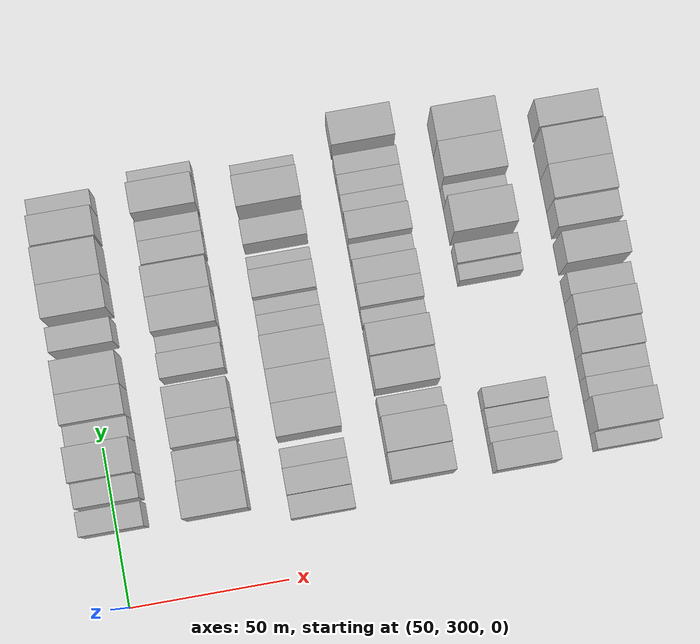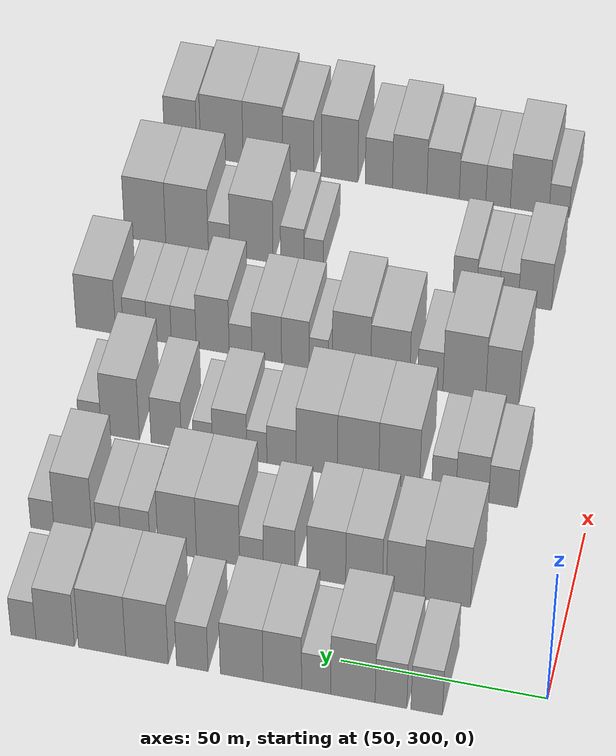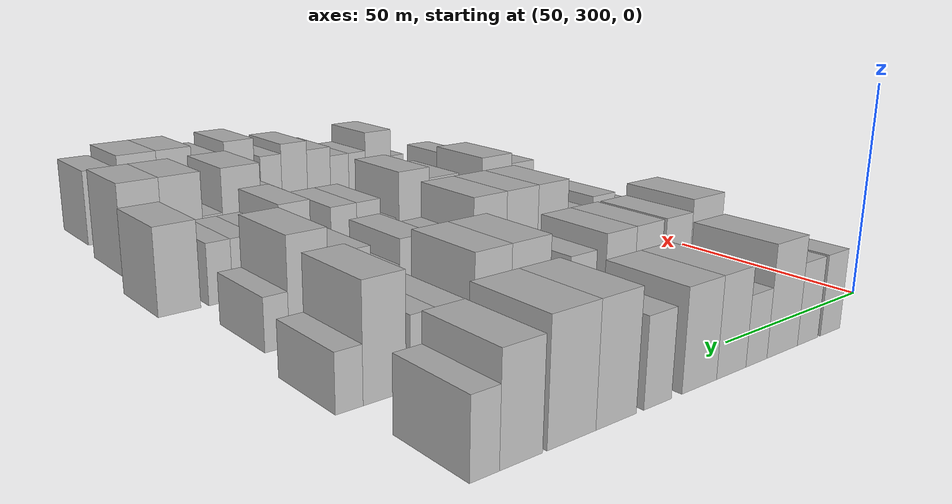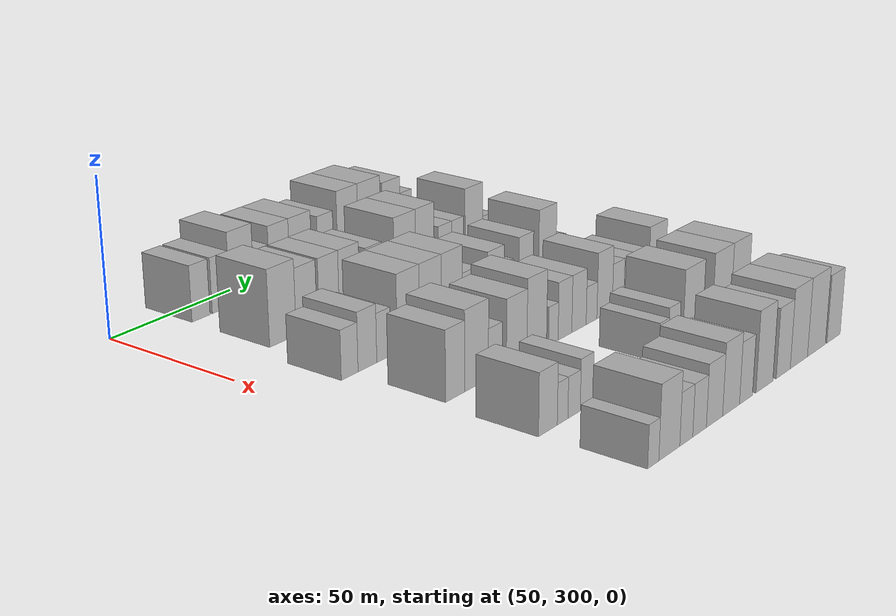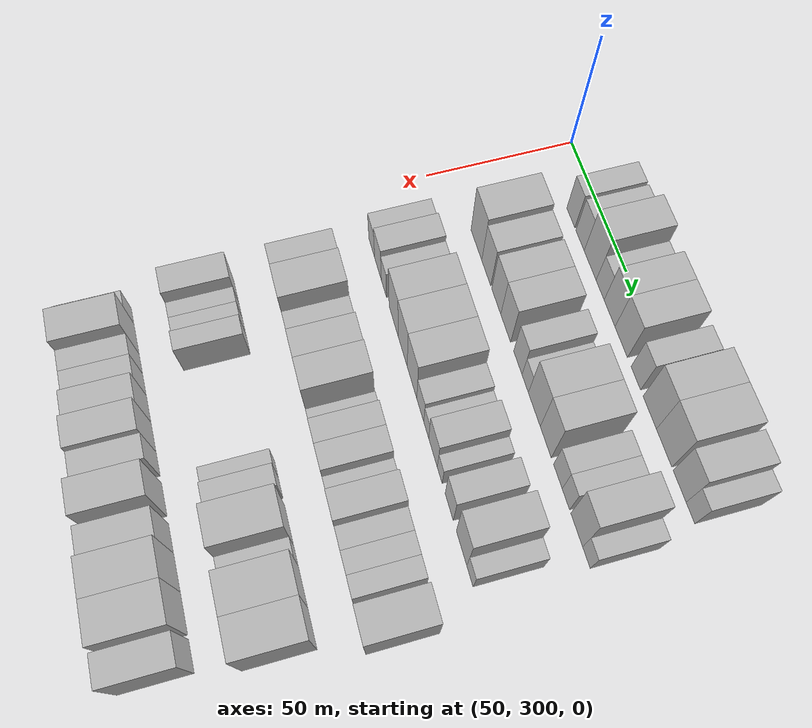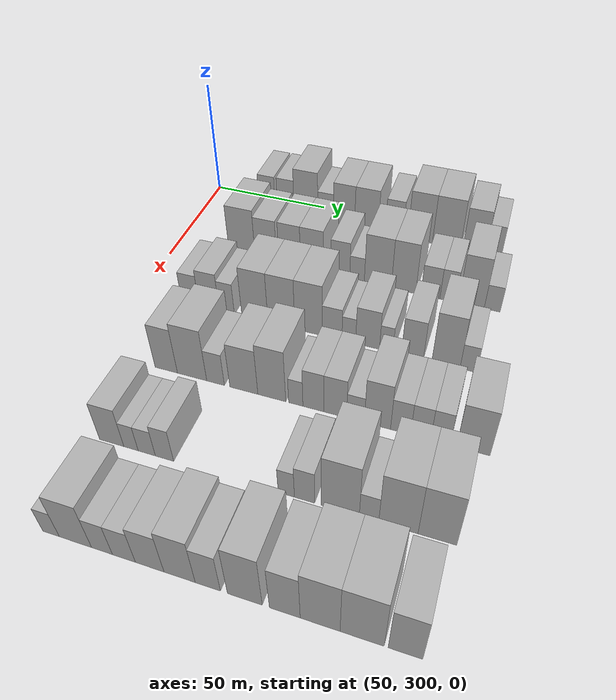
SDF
<sdf version="1.6">
 <world name="default">
  <model name="building_98">
   <static>1</static>
   <pose>50.0000 327.2040 0 0.000000 0.000000 0.000000</pose>
   <link name="link">
    <pose>0 0 9.00 0 0 0</pose>
    <collision name="collision"><geometry><box><size>20.0000 7.5712 18.0000</size></box></geometry></collision>
    <visual name="visual">
     <cast_shadows>0</cast_shadows>
     <geometry><box><size>20.0000 7.5712 18.0000</size></box></geometry>
     <material>
      <script>
       <uri>model://HANNAS_wall/materials/scripts</uri>
       <uri>model://HANNAS_wall/materials/textures</uri>
       <name>vrc/HANNAS_wall</name>
      </script>
     </material>
    </visual>
   </link>
  </model>
  <model name="building_99">
   <static>1</static>
   <pose>50.0000 335.8112 0 0.000000 0.000000 0.000000</pose>
   <link name="link">
    <pose>0 0 9.00 0 0 0</pose>
    <collision name="collision"><geometry><box><size>20.0000 7.6433 18.0000</size></box></geometry></collision>
    <visual name="visual">
     <cast_shadows>0</cast_shadows>
     <geometry><box><size>20.0000 7.6433 18.0000</size></box></geometry>
     <material>
      <script>
       <uri>model://HANNAS_wall/materials/scripts</uri>
       <uri>model://HANNAS_wall/materials/textures</uri>
       <name>vrc/HANNAS_wall</name>
      </script>
     </material>
    </visual>
   </link>
  </model>
  <model name="building_100">
   <static>1</static>
   <pose>50.0000 345.0210 0 0.000000 0.000000 0.000000</pose>
   <link name="link">
    <pose>0 0 12.00 0 0 0</pose>
    <collision name="collision"><geometry><box><size>20.0000 10.7763 24.0000</size></box></geometry></collision>
    <visual name="visual">
     <cast_shadows>0</cast_shadows>
     <geometry><box><size>20.0000 10.7763 24.0000</size></box></geometry>
     <material>
      <script>
       <uri>model://HANNAS_wall/materials/scripts</uri>
       <uri>model://HANNAS_wall/materials/textures</uri>
       <name>vrc/HANNAS_wall</name>
      </script>
     </material>
    </visual>
   </link>
  </model>
  <model name="building_101">
   <static>1</static>
   <pose>50.0000 353.9470 0 0.000000 0.000000 0.000000</pose>
   <link name="link">
    <pose>0 0 7.50 0 0 0</pose>
    <collision name="collision"><geometry><box><size>20.0000 7.0758 15.0000</size></box></geometry></collision>
    <visual name="visual">
     <cast_shadows>0</cast_shadows>
     <geometry><box><size>20.0000 7.0758 15.0000</size></box></geometry>
     <material>
      <script>
       <uri>model://HANNAS_wall/materials/scripts</uri>
       <uri>model://HANNAS_wall/materials/textures</uri>
       <name>vrc/HANNAS_wall</name>
      </script>
     </material>
    </visual>
   </link>
  </model>
  <model name="building_102">
   <static>1</static>
   <pose>50.0000 362.1690 0 0.000000 0.000000 0.000000</pose>
   <link name="link">
    <pose>0 0 10.50 0 0 0</pose>
    <collision name="collision"><geometry><box><size>20.0000 9.3682 21.0000</size></box></geometry></collision>
    <visual name="visual">
     <cast_shadows>0</cast_shadows>
     <geometry><box><size>20.0000 9.3682 21.0000</size></box></geometry>
     <material>
      <script>
       <uri>model://HANNAS_wall/materials/scripts</uri>
       <uri>model://HANNAS_wall/materials/textures</uri>
       <name>vrc/HANNAS_wall</name>
      </script>
     </material>
    </visual>
   </link>
  </model>
  <model name="building_103">
   <static>1</static>
   <pose>50.0000 372.0632 0 0.000000 0.000000 0.000000</pose>
   <link name="link">
    <pose>0 0 10.50 0 0 0</pose>
    <collision name="collision"><geometry><box><size>20.0000 10.4202 21.0000</size></box></geometry></collision>
    <visual name="visual">
     <cast_shadows>0</cast_shadows>
     <geometry><box><size>20.0000 10.4202 21.0000</size></box></geometry>
     <material>
      <script>
       <uri>model://HANNAS_wall/materials/scripts</uri>
       <uri>model://HANNAS_wall/materials/textures</uri>
       <name>vrc/HANNAS_wall</name>
      </script>
     </material>
    </visual>
   </link>
  </model>
  <model name="building_104">
   <static>1</static>
   <pose>50.0000 384.1272 0 0.000000 0.000000 0.000000</pose>
   <link name="link">
    <pose>0 0 9.00 0 0 0</pose>
    <collision name="collision"><geometry><box><size>20.0000 7.7078 18.0000</size></box></geometry></collision>
    <visual name="visual">
     <cast_shadows>0</cast_shadows>
     <geometry><box><size>20.0000 7.7078 18.0000</size></box></geometry>
     <material>
      <script>
       <uri>model://HANNAS_wall/materials/scripts</uri>
       <uri>model://HANNAS_wall/materials/textures</uri>
       <name>vrc/HANNAS_wall</name>
      </script>
     </material>
    </visual>
   </link>
  </model>
  <model name="building_105">
   <static>1</static>
   <pose>50.0000 395.2074 0 0.000000 0.000000 0.000000</pose>
   <link name="link">
    <pose>0 0 12.00 0 0 0</pose>
    <collision name="collision"><geometry><box><size>20.0000 10.4527 24.0000</size></box></geometry></collision>
    <visual name="visual">
     <cast_shadows>0</cast_shadows>
     <geometry><box><size>20.0000 10.4527 24.0000</size></box></geometry>
     <material>
      <script>
       <uri>model://HANNAS_wall/materials/scripts</uri>
       <uri>model://HANNAS_wall/materials/textures</uri>
       <name>vrc/HANNAS_wall</name>
      </script>
     </material>
    </visual>
   </link>
  </model>
  <model name="building_106">
   <static>1</static>
   <pose>50.0000 406.2661 0 0.000000 0.000000 0.000000</pose>
   <link name="link">
    <pose>0 0 12.00 0 0 0</pose>
    <collision name="collision"><geometry><box><size>20.0000 11.6647 24.0000</size></box></geometry></collision>
    <visual name="visual">
     <cast_shadows>0</cast_shadows>
     <geometry><box><size>20.0000 11.6647 24.0000</size></box></geometry>
     <material>
      <script>
       <uri>model://HANNAS_wall/materials/scripts</uri>
       <uri>model://HANNAS_wall/materials/textures</uri>
       <name>vrc/HANNAS_wall</name>
      </script>
     </material>
    </visual>
   </link>
  </model>
  <model name="building_107">
   <static>1</static>
   <pose>50.0000 417.8421 0 0.000000 0.000000 0.000000</pose>
   <link name="link">
    <pose>0 0 10.50 0 0 0</pose>
    <collision name="collision"><geometry><box><size>20.0000 9.4873 21.0000</size></box></geometry></collision>
    <visual name="visual">
     <cast_shadows>0</cast_shadows>
     <geometry><box><size>20.0000 9.4873 21.0000</size></box></geometry>
     <material>
      <script>
       <uri>model://HANNAS_wall/materials/scripts</uri>
       <uri>model://HANNAS_wall/materials/textures</uri>
       <name>vrc/HANNAS_wall</name>
      </script>
     </material>
    </visual>
   </link>
  </model>
  <model name="building_108">
   <static>1</static>
   <pose>50.0000 425.6994 0 0.000000 0.000000 0.000000</pose>
   <link name="link">
    <pose>0 0 7.50 0 0 0</pose>
    <collision name="collision"><geometry><box><size>20.0000 6.2274 15.0000</size></box></geometry></collision>
    <visual name="visual">
     <cast_shadows>0</cast_shadows>
     <geometry><box><size>20.0000 6.2274 15.0000</size></box></geometry>
     <material>
      <script>
       <uri>model://HANNAS_wall/materials/scripts</uri>
       <uri>model://HANNAS_wall/materials/textures</uri>
       <name>vrc/HANNAS_wall</name>
      </script>
     </material>
    </visual>
   </link>
  </model>
  <model name="building_218">
   <static>1</static>
   <pose>82.0000 328.7537 0 0.000000 0.000000 0.000000</pose>
   <link name="link">
    <pose>0 0 12.00 0 0 0</pose>
    <collision name="collision"><geometry><box><size>20.0000 11.4125 24.0000</size></box></geometry></collision>
    <visual name="visual">
     <cast_shadows>0</cast_shadows>
     <geometry><box><size>20.0000 11.4125 24.0000</size></box></geometry>
     <material>
      <script>
       <uri>model://HANNAS_wall/materials/scripts</uri>
       <uri>model://HANNAS_wall/materials/textures</uri>
       <name>vrc/HANNAS_wall</name>
      </script>
     </material>
    </visual>
   </link>
  </model>
  <model name="building_219">
   <static>1</static>
   <pose>82.0000 339.0852 0 0.000000 0.000000 0.000000</pose>
   <link name="link">
    <pose>0 0 10.50 0 0 0</pose>
    <collision name="collision"><geometry><box><size>20.0000 9.2503 21.0000</size></box></geometry></collision>
    <visual name="visual">
     <cast_shadows>0</cast_shadows>
     <geometry><box><size>20.0000 9.2503 21.0000</size></box></geometry>
     <material>
      <script>
       <uri>model://HANNAS_wall/materials/scripts</uri>
       <uri>model://HANNAS_wall/materials/textures</uri>
       <name>vrc/HANNAS_wall</name>
      </script>
     </material>
    </visual>
   </link>
  </model>
  <model name="building_220">
   <static>1</static>
   <pose>82.0000 349.2585 0 0.000000 0.000000 0.000000</pose>
   <link name="link">
    <pose>0 0 10.50 0 0 0</pose>
    <collision name="collision"><geometry><box><size>20.0000 9.0963 21.0000</size></box></geometry></collision>
    <visual name="visual">
     <cast_shadows>0</cast_shadows>
     <geometry><box><size>20.0000 9.0963 21.0000</size></box></geometry>
     <material>
      <script>
       <uri>model://HANNAS_wall/materials/scripts</uri>
       <uri>model://HANNAS_wall/materials/textures</uri>
       <name>vrc/HANNAS_wall</name>
      </script>
     </material>
    </visual>
   </link>
  </model>
  <model name="building_221">
   <static>1</static>
   <pose>82.0000 358.5937 0 0.000000 0.000000 0.000000</pose>
   <link name="link">
    <pose>0 0 10.50 0 0 0</pose>
    <collision name="collision"><geometry><box><size>20.0000 9.5742 21.0000</size></box></geometry></collision>
    <visual name="visual">
     <cast_shadows>0</cast_shadows>
     <geometry><box><size>20.0000 9.5742 21.0000</size></box></geometry>
     <material>
      <script>
       <uri>model://HANNAS_wall/materials/scripts</uri>
       <uri>model://HANNAS_wall/materials/textures</uri>
       <name>vrc/HANNAS_wall</name>
      </script>
     </material>
    </visual>
   </link>
  </model>
  <model name="building_222">
   <static>1</static>
   <pose>82.0000 370.2892 0 0.000000 0.000000 0.000000</pose>
   <link name="link">
    <pose>0 0 9.00 0 0 0</pose>
    <collision name="collision"><geometry><box><size>20.0000 7.8168 18.0000</size></box></geometry></collision>
    <visual name="visual">
     <cast_shadows>0</cast_shadows>
     <geometry><box><size>20.0000 7.8168 18.0000</size></box></geometry>
     <material>
      <script>
       <uri>model://HANNAS_wall/materials/scripts</uri>
       <uri>model://HANNAS_wall/materials/textures</uri>
       <name>vrc/HANNAS_wall</name>
      </script>
     </material>
    </visual>
   </link>
  </model>
  <model name="building_223">
   <static>1</static>
   <pose>82.0000 377.1529 0 0.000000 0.000000 0.000000</pose>
   <link name="link">
    <pose>0 0 6.00 0 0 0</pose>
    <collision name="collision"><geometry><box><size>20.0000 5.9107 12.0000</size></box></geometry></collision>
    <visual name="visual">
     <cast_shadows>0</cast_shadows>
     <geometry><box><size>20.0000 5.9107 12.0000</size></box></geometry>
     <material>
      <script>
       <uri>model://HANNAS_wall/materials/scripts</uri>
       <uri>model://HANNAS_wall/materials/textures</uri>
       <name>vrc/HANNAS_wall</name>
      </script>
     </material>
    </visual>
   </link>
  </model>
  <model name="building_224">
   <static>1</static>
   <pose>82.0000 385.5039 0 0.000000 0.000000 0.000000</pose>
   <link name="link">
    <pose>0 0 12.00 0 0 0</pose>
    <collision name="collision"><geometry><box><size>20.0000 10.7913 24.0000</size></box></geometry></collision>
    <visual name="visual">
     <cast_shadows>0</cast_shadows>
     <geometry><box><size>20.0000 10.7913 24.0000</size></box></geometry>
     <material>
      <script>
       <uri>model://HANNAS_wall/materials/scripts</uri>
       <uri>model://HANNAS_wall/materials/textures</uri>
       <name>vrc/HANNAS_wall</name>
      </script>
     </material>
    </visual>
   </link>
  </model>
  <model name="building_225">
   <static>1</static>
   <pose>82.0000 395.7103 0 0.000000 0.000000 0.000000</pose>
   <link name="link">
    <pose>0 0 12.00 0 0 0</pose>
    <collision name="collision"><geometry><box><size>20.0000 9.6214 24.0000</size></box></geometry></collision>
    <visual name="visual">
     <cast_shadows>0</cast_shadows>
     <geometry><box><size>20.0000 9.6214 24.0000</size></box></geometry>
     <material>
      <script>
       <uri>model://HANNAS_wall/materials/scripts</uri>
       <uri>model://HANNAS_wall/materials/textures</uri>
       <name>vrc/HANNAS_wall</name>
      </script>
     </material>
    </visual>
   </link>
  </model>
  <model name="building_226">
   <static>1</static>
   <pose>82.0000 406.1959 0 0.000000 0.000000 0.000000</pose>
   <link name="link">
    <pose>0 0 7.50 0 0 0</pose>
    <collision name="collision"><geometry><box><size>20.0000 7.3498 15.0000</size></box></geometry></collision>
    <visual name="visual">
     <cast_shadows>0</cast_shadows>
     <geometry><box><size>20.0000 7.3498 15.0000</size></box></geometry>
     <material>
      <script>
       <uri>model://HANNAS_wall/materials/scripts</uri>
       <uri>model://HANNAS_wall/materials/textures</uri>
       <name>vrc/HANNAS_wall</name>
      </script>
     </material>
    </visual>
   </link>
  </model>
  <model name="building_227">
   <static>1</static>
   <pose>82.0000 412.9484 0 0.000000 0.000000 0.000000</pose>
   <link name="link">
    <pose>0 0 7.50 0 0 0</pose>
    <collision name="collision"><geometry><box><size>20.0000 6.1551 15.0000</size></box></geometry></collision>
    <visual name="visual">
     <cast_shadows>0</cast_shadows>
     <geometry><box><size>20.0000 6.1551 15.0000</size></box></geometry>
     <material>
      <script>
       <uri>model://HANNAS_wall/materials/scripts</uri>
       <uri>model://HANNAS_wall/materials/textures</uri>
       <name>vrc/HANNAS_wall</name>
      </script>
     </material>
    </visual>
   </link>
  </model>
  <model name="building_228">
   <static>1</static>
   <pose>82.0000 421.8498 0 0.000000 0.000000 0.000000</pose>
   <link name="link">
    <pose>0 0 12.00 0 0 0</pose>
    <collision name="collision"><geometry><box><size>20.0000 9.6477 24.0000</size></box></geometry></collision>
    <visual name="visual">
     <cast_shadows>0</cast_shadows>
     <geometry><box><size>20.0000 9.6477 24.0000</size></box></geometry>
     <material>
      <script>
       <uri>model://HANNAS_wall/materials/scripts</uri>
       <uri>model://HANNAS_wall/materials/textures</uri>
       <name>vrc/HANNAS_wall</name>
      </script>
     </material>
    </visual>
   </link>
  </model>
  <model name="building_229">
   <static>1</static>
   <pose>82.0000 429.6573 0 0.000000 0.000000 0.000000</pose>
   <link name="link">
    <pose>0 0 6.00 0 0 0</pose>
    <collision name="collision"><geometry><box><size>20.0000 5.9674 12.0000</size></box></geometry></collision>
    <visual name="visual">
     <cast_shadows>0</cast_shadows>
     <geometry><box><size>20.0000 5.9674 12.0000</size></box></geometry>
     <material>
      <script>
       <uri>model://HANNAS_wall/materials/scripts</uri>
       <uri>model://HANNAS_wall/materials/textures</uri>
       <name>vrc/HANNAS_wall</name>
      </script>
     </material>
    </visual>
   </link>
  </model>
  <model name="building_337">
   <static>1</static>
   <pose>114.0000 321.2197 0 0.000000 0.000000 0.000000</pose>
   <link name="link">
    <pose>0 0 7.50 0 0 0</pose>
    <collision name="collision"><geometry><box><size>20.0000 7.1749 15.0000</size></box></geometry></collision>
    <visual name="visual">
     <cast_shadows>0</cast_shadows>
     <geometry><box><size>20.0000 7.1749 15.0000</size></box></geometry>
     <material>
      <script>
       <uri>model://HANNAS_wall/materials/scripts</uri>
       <uri>model://HANNAS_wall/materials/textures</uri>
       <name>vrc/HANNAS_wall</name>
      </script>
     </material>
    </visual>
   </link>
  </model>
  <model name="building_338">
   <static>1</static>
   <pose>114.0000 328.8917 0 0.000000 0.000000 0.000000</pose>
   <link name="link">
    <pose>0 0 9.00 0 0 0</pose>
    <collision name="collision"><geometry><box><size>20.0000 8.1691 18.0000</size></box></geometry></collision>
    <visual name="visual">
     <cast_shadows>0</cast_shadows>
     <geometry><box><size>20.0000 8.1691 18.0000</size></box></geometry>
     <material>
      <script>
       <uri>model://HANNAS_wall/materials/scripts</uri>
       <uri>model://HANNAS_wall/materials/textures</uri>
       <name>vrc/HANNAS_wall</name>
      </script>
     </material>
    </visual>
   </link>
  </model>
  <model name="building_339">
   <static>1</static>
   <pose>114.0000 336.0602 0 0.000000 0.000000 0.000000</pose>
   <link name="link">
    <pose>0 0 7.50 0 0 0</pose>
    <collision name="collision"><geometry><box><size>20.0000 6.1678 15.0000</size></box></geometry></collision>
    <visual name="visual">
     <cast_shadows>0</cast_shadows>
     <geometry><box><size>20.0000 6.1678 15.0000</size></box></geometry>
     <material>
      <script>
       <uri>model://HANNAS_wall/materials/scripts</uri>
       <uri>model://HANNAS_wall/materials/textures</uri>
       <name>vrc/HANNAS_wall</name>
      </script>
     </material>
    </visual>
   </link>
  </model>
  <model name="building_340">
   <static>1</static>
   <pose>114.0000 347.3075 0 0.000000 0.000000 0.000000</pose>
   <link name="link">
    <pose>0 0 12.00 0 0 0</pose>
    <collision name="collision"><geometry><box><size>20.0000 10.3268 24.0000</size></box></geometry></collision>
    <visual name="visual">
     <cast_shadows>0</cast_shadows>
     <geometry><box><size>20.0000 10.3268 24.0000</size></box></geometry>
     <material>
      <script>
       <uri>model://HANNAS_wall/materials/scripts</uri>
       <uri>model://HANNAS_wall/materials/textures</uri>
       <name>vrc/HANNAS_wall</name>
      </script>
     </material>
    </visual>
   </link>
  </model>
  <model name="building_341">
   <static>1</static>
   <pose>114.0000 357.6851 0 0.000000 0.000000 0.000000</pose>
   <link name="link">
    <pose>0 0 12.00 0 0 0</pose>
    <collision name="collision"><geometry><box><size>20.0000 10.4284 24.0000</size></box></geometry></collision>
    <visual name="visual">
     <cast_shadows>0</cast_shadows>
     <geometry><box><size>20.0000 10.4284 24.0000</size></box></geometry>
     <material>
      <script>
       <uri>model://HANNAS_wall/materials/scripts</uri>
       <uri>model://HANNAS_wall/materials/textures</uri>
       <name>vrc/HANNAS_wall</name>
      </script>
     </material>
    </visual>
   </link>
  </model>
  <model name="building_342">
   <static>1</static>
   <pose>114.0000 368.1041 0 0.000000 0.000000 0.000000</pose>
   <link name="link">
    <pose>0 0 12.00 0 0 0</pose>
    <collision name="collision"><geometry><box><size>20.0000 10.4096 24.0000</size></box></geometry></collision>
    <visual name="visual">
     <cast_shadows>0</cast_shadows>
     <geometry><box><size>20.0000 10.4096 24.0000</size></box></geometry>
     <material>
      <script>
       <uri>model://HANNAS_wall/materials/scripts</uri>
       <uri>model://HANNAS_wall/materials/textures</uri>
       <name>vrc/HANNAS_wall</name>
      </script>
     </material>
    </visual>
   </link>
  </model>
  <model name="building_343">
   <static>1</static>
   <pose>114.0000 377.0404 0 0.000000 0.000000 0.000000</pose>
   <link name="link">
    <pose>0 0 7.50 0 0 0</pose>
    <collision name="collision"><geometry><box><size>20.0000 7.4631 15.0000</size></box></geometry></collision>
    <visual name="visual">
     <cast_shadows>0</cast_shadows>
     <geometry><box><size>20.0000 7.4631 15.0000</size></box></geometry>
     <material>
      <script>
       <uri>model://HANNAS_wall/materials/scripts</uri>
       <uri>model://HANNAS_wall/materials/textures</uri>
       <name>vrc/HANNAS_wall</name>
      </script>
     </material>
    </visual>
   </link>
  </model>
  <model name="building_344">
   <static>1</static>
   <pose>114.0000 383.3212 0 0.000000 0.000000 0.000000</pose>
   <link name="link">
    <pose>0 0 6.00 0 0 0</pose>
    <collision name="collision"><geometry><box><size>20.0000 5.0985 12.0000</size></box></geometry></collision>
    <visual name="visual">
     <cast_shadows>0</cast_shadows>
     <geometry><box><size>20.0000 5.0985 12.0000</size></box></geometry>
     <material>
      <script>
       <uri>model://HANNAS_wall/materials/scripts</uri>
       <uri>model://HANNAS_wall/materials/textures</uri>
       <name>vrc/HANNAS_wall</name>
      </script>
     </material>
    </visual>
   </link>
  </model>
  <model name="building_345">
   <static>1</static>
   <pose>114.0000 390.2511 0 0.000000 0.000000 0.000000</pose>
   <link name="link">
    <pose>0 0 9.00 0 0 0</pose>
    <collision name="collision"><geometry><box><size>20.0000 8.7613 18.0000</size></box></geometry></collision>
    <visual name="visual">
     <cast_shadows>0</cast_shadows>
     <geometry><box><size>20.0000 8.7613 18.0000</size></box></geometry>
     <material>
      <script>
       <uri>model://HANNAS_wall/materials/scripts</uri>
       <uri>model://HANNAS_wall/materials/textures</uri>
       <name>vrc/HANNAS_wall</name>
      </script>
     </material>
    </visual>
   </link>
  </model>
  <model name="building_346">
   <static>1</static>
   <pose>114.0000 397.0766 0 0.000000 0.000000 0.000000</pose>
   <link name="link">
    <pose>0 0 6.00 0 0 0</pose>
    <collision name="collision"><geometry><box><size>20.0000 4.8898 12.0000</size></box></geometry></collision>
    <visual name="visual">
     <cast_shadows>0</cast_shadows>
     <geometry><box><size>20.0000 4.8898 12.0000</size></box></geometry>
     <material>
      <script>
       <uri>model://HANNAS_wall/materials/scripts</uri>
       <uri>model://HANNAS_wall/materials/textures</uri>
       <name>vrc/HANNAS_wall</name>
      </script>
     </material>
    </visual>
   </link>
  </model>
  <model name="building_347">
   <static>1</static>
   <pose>114.0000 406.4468 0 0.000000 0.000000 0.000000</pose>
   <link name="link">
    <pose>0 0 9.00 0 0 0</pose>
    <collision name="collision"><geometry><box><size>20.0000 7.8505 18.0000</size></box></geometry></collision>
    <visual name="visual">
     <cast_shadows>0</cast_shadows>
     <geometry><box><size>20.0000 7.8505 18.0000</size></box></geometry>
     <material>
      <script>
       <uri>model://HANNAS_wall/materials/scripts</uri>
       <uri>model://HANNAS_wall/materials/textures</uri>
       <name>vrc/HANNAS_wall</name>
      </script>
     </material>
    </visual>
   </link>
  </model>
  <model name="building_348">
   <static>1</static>
   <pose>114.0000 418.2760 0 0.000000 0.000000 0.000000</pose>
   <link name="link">
    <pose>0 0 12.00 0 0 0</pose>
    <collision name="collision"><geometry><box><size>20.0000 9.8080 24.0000</size></box></geometry></collision>
    <visual name="visual">
     <cast_shadows>0</cast_shadows>
     <geometry><box><size>20.0000 9.8080 24.0000</size></box></geometry>
     <material>
      <script>
       <uri>model://HANNAS_wall/materials/scripts</uri>
       <uri>model://HANNAS_wall/materials/textures</uri>
       <name>vrc/HANNAS_wall</name>
      </script>
     </material>
    </visual>
   </link>
  </model>
  <model name="building_349">
   <static>1</static>
   <pose>114.0000 426.0609 0 0.000000 0.000000 0.000000</pose>
   <link name="link">
    <pose>0 0 6.00 0 0 0</pose>
    <collision name="collision"><geometry><box><size>20.0000 5.7618 12.0000</size></box></geometry></collision>
    <visual name="visual">
     <cast_shadows>0</cast_shadows>
     <geometry><box><size>20.0000 5.7618 12.0000</size></box></geometry>
     <material>
      <script>
       <uri>model://HANNAS_wall/materials/scripts</uri>
       <uri>model://HANNAS_wall/materials/textures</uri>
       <name>vrc/HANNAS_wall</name>
      </script>
     </material>
    </visual>
   </link>
  </model>
  <model name="building_459">
   <static>1</static>
   <pose>146.0000 327.5801 0 0.000000 0.000000 0.000000</pose>
   <link name="link">
    <pose>0 0 10.50 0 0 0</pose>
    <collision name="collision"><geometry><box><size>20.0000 8.4968 21.0000</size></box></geometry></collision>
    <visual name="visual">
     <cast_shadows>0</cast_shadows>
     <geometry><box><size>20.0000 8.4968 21.0000</size></box></geometry>
     <material>
      <script>
       <uri>model://HANNAS_wall/materials/scripts</uri>
       <uri>model://HANNAS_wall/materials/textures</uri>
       <name>vrc/HANNAS_wall</name>
      </script>
     </material>
    </visual>
   </link>
  </model>
  <model name="building_460">
   <static>1</static>
   <pose>146.0000 337.3083 0 0.000000 0.000000 0.000000</pose>
   <link name="link">
    <pose>0 0 12.00 0 0 0</pose>
    <collision name="collision"><geometry><box><size>20.0000 10.9595 24.0000</size></box></geometry></collision>
    <visual name="visual">
     <cast_shadows>0</cast_shadows>
     <geometry><box><size>20.0000 10.9595 24.0000</size></box></geometry>
     <material>
      <script>
       <uri>model://HANNAS_wall/materials/scripts</uri>
       <uri>model://HANNAS_wall/materials/textures</uri>
       <name>vrc/HANNAS_wall</name>
      </script>
     </material>
    </visual>
   </link>
  </model>
  <model name="building_461">
   <static>1</static>
   <pose>146.0000 346.0416 0 0.000000 0.000000 0.000000</pose>
   <link name="link">
    <pose>0 0 7.50 0 0 0</pose>
    <collision name="collision"><geometry><box><size>20.0000 6.5072 15.0000</size></box></geometry></collision>
    <visual name="visual">
     <cast_shadows>0</cast_shadows>
     <geometry><box><size>20.0000 6.5072 15.0000</size></box></geometry>
     <material>
      <script>
       <uri>model://HANNAS_wall/materials/scripts</uri>
       <uri>model://HANNAS_wall/materials/textures</uri>
       <name>vrc/HANNAS_wall</name>
      </script>
     </material>
    </visual>
   </link>
  </model>
  <model name="building_462">
   <static>1</static>
   <pose>146.0000 356.3337 0 0.000000 0.000000 0.000000</pose>
   <link name="link">
    <pose>0 0 10.50 0 0 0</pose>
    <collision name="collision"><geometry><box><size>20.0000 10.0771 21.0000</size></box></geometry></collision>
    <visual name="visual">
     <cast_shadows>0</cast_shadows>
     <geometry><box><size>20.0000 10.0771 21.0000</size></box></geometry>
     <material>
      <script>
       <uri>model://HANNAS_wall/materials/scripts</uri>
       <uri>model://HANNAS_wall/materials/textures</uri>
       <name>vrc/HANNAS_wall</name>
      </script>
     </material>
    </visual>
   </link>
  </model>
  <model name="building_463">
   <static>1</static>
   <pose>146.0000 366.3105 0 0.000000 0.000000 0.000000</pose>
   <link name="link">
    <pose>0 0 12.00 0 0 0</pose>
    <collision name="collision"><geometry><box><size>20.0000 9.8765 24.0000</size></box></geometry></collision>
    <visual name="visual">
     <cast_shadows>0</cast_shadows>
     <geometry><box><size>20.0000 9.8765 24.0000</size></box></geometry>
     <material>
      <script>
       <uri>model://HANNAS_wall/materials/scripts</uri>
       <uri>model://HANNAS_wall/materials/textures</uri>
       <name>vrc/HANNAS_wall</name>
      </script>
     </material>
    </visual>
   </link>
  </model>
  <model name="building_464">
   <static>1</static>
   <pose>146.0000 374.7264 0 0.000000 0.000000 0.000000</pose>
   <link name="link">
    <pose>0 0 6.00 0 0 0</pose>
    <collision name="collision"><geometry><box><size>20.0000 4.9553 12.0000</size></box></geometry></collision>
    <visual name="visual">
     <cast_shadows>0</cast_shadows>
     <geometry><box><size>20.0000 4.9553 12.0000</size></box></geometry>
     <material>
      <script>
       <uri>model://HANNAS_wall/materials/scripts</uri>
       <uri>model://HANNAS_wall/materials/textures</uri>
       <name>vrc/HANNAS_wall</name>
      </script>
     </material>
    </visual>
   </link>
  </model>
  <model name="building_465">
   <static>1</static>
   <pose>146.0000 380.8048 0 0.000000 0.000000 0.000000</pose>
   <link name="link">
    <pose>0 0 9.00 0 0 0</pose>
    <collision name="collision"><geometry><box><size>20.0000 7.2015 18.0000</size></box></geometry></collision>
    <visual name="visual">
     <cast_shadows>0</cast_shadows>
     <geometry><box><size>20.0000 7.2015 18.0000</size></box></geometry>
     <material>
      <script>
       <uri>model://HANNAS_wall/materials/scripts</uri>
       <uri>model://HANNAS_wall/materials/textures</uri>
       <name>vrc/HANNAS_wall</name>
      </script>
     </material>
    </visual>
   </link>
  </model>
  <model name="building_466">
   <static>1</static>
   <pose>146.0000 388.2683 0 0.000000 0.000000 0.000000</pose>
   <link name="link">
    <pose>0 0 9.00 0 0 0</pose>
    <collision name="collision"><geometry><box><size>20.0000 7.7255 18.0000</size></box></geometry></collision>
    <visual name="visual">
     <cast_shadows>0</cast_shadows>
     <geometry><box><size>20.0000 7.7255 18.0000</size></box></geometry>
     <material>
      <script>
       <uri>model://HANNAS_wall/materials/scripts</uri>
       <uri>model://HANNAS_wall/materials/textures</uri>
       <name>vrc/HANNAS_wall</name>
      </script>
     </material>
    </visual>
   </link>
  </model>
  <model name="building_467">
   <static>1</static>
   <pose>146.0000 395.0750 0 0.000000 0.000000 0.000000</pose>
   <link name="link">
    <pose>0 0 6.00 0 0 0</pose>
    <collision name="collision"><geometry><box><size>20.0000 5.8878 12.0000</size></box></geometry></collision>
    <visual name="visual">
     <cast_shadows>0</cast_shadows>
     <geometry><box><size>20.0000 5.8878 12.0000</size></box></geometry>
     <material>
      <script>
       <uri>model://HANNAS_wall/materials/scripts</uri>
       <uri>model://HANNAS_wall/materials/textures</uri>
       <name>vrc/HANNAS_wall</name>
      </script>
     </material>
    </visual>
   </link>
  </model>
  <model name="building_468">
   <static>1</static>
   <pose>146.0000 402.3259 0 0.000000 0.000000 0.000000</pose>
   <link name="link">
    <pose>0 0 10.50 0 0 0</pose>
    <collision name="collision"><geometry><box><size>20.0000 8.6141 21.0000</size></box></geometry></collision>
    <visual name="visual">
     <cast_shadows>0</cast_shadows>
     <geometry><box><size>20.0000 8.6141 21.0000</size></box></geometry>
     <material>
      <script>
       <uri>model://HANNAS_wall/materials/scripts</uri>
       <uri>model://HANNAS_wall/materials/textures</uri>
       <name>vrc/HANNAS_wall</name>
      </script>
     </material>
    </visual>
   </link>
  </model>
  <model name="building_469">
   <static>1</static>
   <pose>146.0000 409.8785 0 0.000000 0.000000 0.000000</pose>
   <link name="link">
    <pose>0 0 7.50 0 0 0</pose>
    <collision name="collision"><geometry><box><size>20.0000 6.4911 15.0000</size></box></geometry></collision>
    <visual name="visual">
     <cast_shadows>0</cast_shadows>
     <geometry><box><size>20.0000 6.4911 15.0000</size></box></geometry>
     <material>
      <script>
       <uri>model://HANNAS_wall/materials/scripts</uri>
       <uri>model://HANNAS_wall/materials/textures</uri>
       <name>vrc/HANNAS_wall</name>
      </script>
     </material>
    </visual>
   </link>
  </model>
  <model name="building_470">
   <static>1</static>
   <pose>146.0000 416.3418 0 0.000000 0.000000 0.000000</pose>
   <link name="link">
    <pose>0 0 7.50 0 0 0</pose>
    <collision name="collision"><geometry><box><size>20.0000 6.4356 15.0000</size></box></geometry></collision>
    <visual name="visual">
     <cast_shadows>0</cast_shadows>
     <geometry><box><size>20.0000 6.4356 15.0000</size></box></geometry>
     <material>
      <script>
       <uri>model://HANNAS_wall/materials/scripts</uri>
       <uri>model://HANNAS_wall/materials/textures</uri>
       <name>vrc/HANNAS_wall</name>
      </script>
     </material>
    </visual>
   </link>
  </model>
  <model name="building_471">
   <static>1</static>
   <pose>146.0000 422.6478 0 0.000000 0.000000 0.000000</pose>
   <link name="link">
    <pose>0 0 7.50 0 0 0</pose>
    <collision name="collision"><geometry><box><size>20.0000 6.1763 15.0000</size></box></geometry></collision>
    <visual name="visual">
     <cast_shadows>0</cast_shadows>
     <geometry><box><size>20.0000 6.1763 15.0000</size></box></geometry>
     <material>
      <script>
       <uri>model://HANNAS_wall/materials/scripts</uri>
       <uri>model://HANNAS_wall/materials/textures</uri>
       <name>vrc/HANNAS_wall</name>
      </script>
     </material>
    </visual>
   </link>
  </model>
  <model name="building_472">
   <static>1</static>
   <pose>146.0000 432.9079 0 0.000000 0.000000 0.000000</pose>
   <link name="link">
    <pose>0 0 10.50 0 0 0</pose>
    <collision name="collision"><geometry><box><size>20.0000 10.3438 21.0000</size></box></geometry></collision>
    <visual name="visual">
     <cast_shadows>0</cast_shadows>
     <geometry><box><size>20.0000 10.3438 21.0000</size></box></geometry>
     <material>
      <script>
       <uri>model://HANNAS_wall/materials/scripts</uri>
       <uri>model://HANNAS_wall/materials/textures</uri>
       <name>vrc/HANNAS_wall</name>
      </script>
     </material>
    </visual>
   </link>
  </model>
  <model name="building_577">
   <static>1</static>
   <pose>178.0000 325.2298 0 0.000000 0.000000 0.000000</pose>
   <link name="link">
    <pose>0 0 9.00 0 0 0</pose>
    <collision name="collision"><geometry><box><size>20.0000 8.5969 18.0000</size></box></geometry></collision>
    <visual name="visual">
     <cast_shadows>0</cast_shadows>
     <geometry><box><size>20.0000 8.5969 18.0000</size></box></geometry>
     <material>
      <script>
       <uri>model://HANNAS_wall/materials/scripts</uri>
       <uri>model://HANNAS_wall/materials/textures</uri>
       <name>vrc/HANNAS_wall</name>
      </script>
     </material>
    </visual>
   </link>
  </model>
  <model name="building_578">
   <static>1</static>
   <pose>178.0000 332.0185 0 0.000000 0.000000 0.000000</pose>
   <link name="link">
    <pose>0 0 6.00 0 0 0</pose>
    <collision name="collision"><geometry><box><size>20.0000 4.9804 12.0000</size></box></geometry></collision>
    <visual name="visual">
     <cast_shadows>0</cast_shadows>
     <geometry><box><size>20.0000 4.9804 12.0000</size></box></geometry>
     <material>
      <script>
       <uri>model://HANNAS_wall/materials/scripts</uri>
       <uri>model://HANNAS_wall/materials/textures</uri>
       <name>vrc/HANNAS_wall</name>
      </script>
     </material>
    </visual>
   </link>
  </model>
  <model name="building_579">
   <static>1</static>
   <pose>178.0000 337.4584 0 0.000000 0.000000 0.000000</pose>
   <link name="link">
    <pose>0 0 6.00 0 0 0</pose>
    <collision name="collision"><geometry><box><size>20.0000 5.8994 12.0000</size></box></geometry></collision>
    <visual name="visual">
     <cast_shadows>0</cast_shadows>
     <geometry><box><size>20.0000 5.8994 12.0000</size></box></geometry>
     <material>
      <script>
       <uri>model://HANNAS_wall/materials/scripts</uri>
       <uri>model://HANNAS_wall/materials/textures</uri>
       <name>vrc/HANNAS_wall</name>
      </script>
     </material>
    </visual>
   </link>
  </model>
  <model name="building_580">
   <static>1</static>
   <pose>178.0000 343.5249 0 0.000000 0.000000 0.000000</pose>
   <link name="link">
    <pose>0 0 7.50 0 0 0</pose>
    <collision name="collision"><geometry><box><size>20.0000 6.2336 15.0000</size></box></geometry></collision>
    <visual name="visual">
     <cast_shadows>0</cast_shadows>
     <geometry><box><size>20.0000 6.2336 15.0000</size></box></geometry>
     <material>
      <script>
       <uri>model://HANNAS_wall/materials/scripts</uri>
       <uri>model://HANNAS_wall/materials/textures</uri>
       <name>vrc/HANNAS_wall</name>
      </script>
     </material>
    </visual>
   </link>
  </model>
  <model name="building_581">
   <static>1</static>
   <pose>178.0000 383.2397 0 0.000000 0.000000 0.000000</pose>
   <link name="link">
    <pose>0 0 6.00 0 0 0</pose>
    <collision name="collision"><geometry><box><size>20.0000 5.0654 12.0000</size></box></geometry></collision>
    <visual name="visual">
     <cast_shadows>0</cast_shadows>
     <geometry><box><size>20.0000 5.0654 12.0000</size></box></geometry>
     <material>
      <script>
       <uri>model://HANNAS_wall/materials/scripts</uri>
       <uri>model://HANNAS_wall/materials/textures</uri>
       <name>vrc/HANNAS_wall</name>
      </script>
     </material>
    </visual>
   </link>
  </model>
  <model name="building_582">
   <static>1</static>
   <pose>178.0000 388.8970 0 0.000000 0.000000 0.000000</pose>
   <link name="link">
    <pose>0 0 7.50 0 0 0</pose>
    <collision name="collision"><geometry><box><size>20.0000 6.2492 15.0000</size></box></geometry></collision>
    <visual name="visual">
     <cast_shadows>0</cast_shadows>
     <geometry><box><size>20.0000 6.2492 15.0000</size></box></geometry>
     <material>
      <script>
       <uri>model://HANNAS_wall/materials/scripts</uri>
       <uri>model://HANNAS_wall/materials/textures</uri>
       <name>vrc/HANNAS_wall</name>
      </script>
     </material>
    </visual>
   </link>
  </model>
  <model name="building_583">
   <static>1</static>
   <pose>178.0000 399.7469 0 0.000000 0.000000 0.000000</pose>
   <link name="link">
    <pose>0 0 12.00 0 0 0</pose>
    <collision name="collision"><geometry><box><size>20.0000 11.4507 24.0000</size></box></geometry></collision>
    <visual name="visual">
     <cast_shadows>0</cast_shadows>
     <geometry><box><size>20.0000 11.4507 24.0000</size></box></geometry>
     <material>
      <script>
       <uri>model://HANNAS_wall/materials/scripts</uri>
       <uri>model://HANNAS_wall/materials/textures</uri>
       <name>vrc/HANNAS_wall</name>
      </script>
     </material>
    </visual>
   </link>
  </model>
  <model name="building_584">
   <static>1</static>
   <pose>178.0000 408.3435 0 0.000000 0.000000 0.000000</pose>
   <link name="link">
    <pose>0 0 6.00 0 0 0</pose>
    <collision name="collision"><geometry><box><size>20.0000 5.7425 12.0000</size></box></geometry></collision>
    <visual name="visual">
     <cast_shadows>0</cast_shadows>
     <geometry><box><size>20.0000 5.7425 12.0000</size></box></geometry>
     <material>
      <script>
       <uri>model://HANNAS_wall/materials/scripts</uri>
       <uri>model://HANNAS_wall/materials/textures</uri>
       <name>vrc/HANNAS_wall</name>
      </script>
     </material>
    </visual>
   </link>
  </model>
  <model name="building_585">
   <static>1</static>
   <pose>178.0000 416.8944 0 0.000000 0.000000 0.000000</pose>
   <link name="link">
    <pose>0 0 12.00 0 0 0</pose>
    <collision name="collision"><geometry><box><size>20.0000 11.3593 24.0000</size></box></geometry></collision>
    <visual name="visual">
     <cast_shadows>0</cast_shadows>
     <geometry><box><size>20.0000 11.3593 24.0000</size></box></geometry>
     <material>
      <script>
       <uri>model://HANNAS_wall/materials/scripts</uri>
       <uri>model://HANNAS_wall/materials/textures</uri>
       <name>vrc/HANNAS_wall</name>
      </script>
     </material>
    </visual>
   </link>
  </model>
  <model name="building_586">
   <static>1</static>
   <pose>178.0000 428.0580 0 0.000000 0.000000 0.000000</pose>
   <link name="link">
    <pose>0 0 12.00 0 0 0</pose>
    <collision name="collision"><geometry><box><size>20.0000 10.9678 24.0000</size></box></geometry></collision>
    <visual name="visual">
     <cast_shadows>0</cast_shadows>
     <geometry><box><size>20.0000 10.9678 24.0000</size></box></geometry>
     <material>
      <script>
       <uri>model://HANNAS_wall/materials/scripts</uri>
       <uri>model://HANNAS_wall/materials/textures</uri>
       <name>vrc/HANNAS_wall</name>
      </script>
     </material>
    </visual>
   </link>
  </model>
  <model name="building_696">
   <static>1</static>
   <pose>210.0000 324.7985 0 0.000000 0.000000 0.000000</pose>
   <link name="link">
    <pose>0 0 6.00 0 0 0</pose>
    <collision name="collision"><geometry><box><size>20.0000 5.3555 12.0000</size></box></geometry></collision>
    <visual name="visual">
     <cast_shadows>0</cast_shadows>
     <geometry><box><size>20.0000 5.3555 12.0000</size></box></geometry>
     <material>
      <script>
       <uri>model://HANNAS_wall/materials/scripts</uri>
       <uri>model://HANNAS_wall/materials/textures</uri>
       <name>vrc/HANNAS_wall</name>
      </script>
     </material>
    </visual>
   </link>
  </model>
  <model name="building_697">
   <static>1</static>
   <pose>210.0000 332.6254 0 0.000000 0.000000 0.000000</pose>
   <link name="link">
    <pose>0 0 10.50 0 0 0</pose>
    <collision name="collision"><geometry><box><size>20.0000 10.2983 21.0000</size></box></geometry></collision>
    <visual name="visual">
     <cast_shadows>0</cast_shadows>
     <geometry><box><size>20.0000 10.2983 21.0000</size></box></geometry>
     <material>
      <script>
       <uri>model://HANNAS_wall/materials/scripts</uri>
       <uri>model://HANNAS_wall/materials/textures</uri>
       <name>vrc/HANNAS_wall</name>
      </script>
     </material>
    </visual>
   </link>
  </model>
  <model name="building_698">
   <static>1</static>
   <pose>210.0000 341.0498 0 0.000000 0.000000 0.000000</pose>
   <link name="link">
    <pose>0 0 7.50 0 0 0</pose>
    <collision name="collision"><geometry><box><size>20.0000 6.5504 15.0000</size></box></geometry></collision>
    <visual name="visual">
     <cast_shadows>0</cast_shadows>
     <geometry><box><size>20.0000 6.5504 15.0000</size></box></geometry>
     <material>
      <script>
       <uri>model://HANNAS_wall/materials/scripts</uri>
       <uri>model://HANNAS_wall/materials/textures</uri>
       <name>vrc/HANNAS_wall</name>
      </script>
     </material>
    </visual>
   </link>
  </model>
  <model name="building_699">
   <static>1</static>
   <pose>210.0000 347.8546 0 0.000000 0.000000 0.000000</pose>
   <link name="link">
    <pose>0 0 7.50 0 0 0</pose>
    <collision name="collision"><geometry><box><size>20.0000 7.0592 15.0000</size></box></geometry></collision>
    <visual name="visual">
     <cast_shadows>0</cast_shadows>
     <geometry><box><size>20.0000 7.0592 15.0000</size></box></geometry>
     <material>
      <script>
       <uri>model://HANNAS_wall/materials/scripts</uri>
       <uri>model://HANNAS_wall/materials/textures</uri>
       <name>vrc/HANNAS_wall</name>
      </script>
     </material>
    </visual>
   </link>
  </model>
  <model name="building_700">
   <static>1</static>
   <pose>210.0000 355.7050 0 0.000000 0.000000 0.000000</pose>
   <link name="link">
    <pose>0 0 9.00 0 0 0</pose>
    <collision name="collision"><geometry><box><size>20.0000 8.6417 18.0000</size></box></geometry></collision>
    <visual name="visual">
     <cast_shadows>0</cast_shadows>
     <geometry><box><size>20.0000 8.6417 18.0000</size></box></geometry>
     <material>
      <script>
       <uri>model://HANNAS_wall/materials/scripts</uri>
       <uri>model://HANNAS_wall/materials/textures</uri>
       <name>vrc/HANNAS_wall</name>
      </script>
     </material>
    </visual>
   </link>
  </model>
  <model name="building_701">
   <static>1</static>
   <pose>210.0000 364.6479 0 0.000000 0.000000 0.000000</pose>
   <link name="link">
    <pose>0 0 10.50 0 0 0</pose>
    <collision name="collision"><geometry><box><size>20.0000 9.2441 21.0000</size></box></geometry></collision>
    <visual name="visual">
     <cast_shadows>0</cast_shadows>
     <geometry><box><size>20.0000 9.2441 21.0000</size></box></geometry>
     <material>
      <script>
       <uri>model://HANNAS_wall/materials/scripts</uri>
       <uri>model://HANNAS_wall/materials/textures</uri>
       <name>vrc/HANNAS_wall</name>
      </script>
     </material>
    </visual>
   </link>
  </model>
  <model name="building_702">
   <static>1</static>
   <pose>210.0000 372.9199 0 0.000000 0.000000 0.000000</pose>
   <link name="link">
    <pose>0 0 9.00 0 0 0</pose>
    <collision name="collision"><geometry><box><size>20.0000 7.2999 18.0000</size></box></geometry></collision>
    <visual name="visual">
     <cast_shadows>0</cast_shadows>
     <geometry><box><size>20.0000 7.2999 18.0000</size></box></geometry>
     <material>
      <script>
       <uri>model://HANNAS_wall/materials/scripts</uri>
       <uri>model://HANNAS_wall/materials/textures</uri>
       <name>vrc/HANNAS_wall</name>
      </script>
     </material>
    </visual>
   </link>
  </model>
  <model name="building_703">
   <static>1</static>
   <pose>210.0000 383.4878 0 0.000000 0.000000 0.000000</pose>
   <link name="link">
    <pose>0 0 12.00 0 0 0</pose>
    <collision name="collision"><geometry><box><size>20.0000 9.8358 24.0000</size></box></geometry></collision>
    <visual name="visual">
     <cast_shadows>0</cast_shadows>
     <geometry><box><size>20.0000 9.8358 24.0000</size></box></geometry>
     <material>
      <script>
       <uri>model://HANNAS_wall/materials/scripts</uri>
       <uri>model://HANNAS_wall/materials/textures</uri>
       <name>vrc/HANNAS_wall</name>
      </script>
     </material>
    </visual>
   </link>
  </model>
  <model name="building_704">
   <static>1</static>
   <pose>210.0000 394.6316 0 0.000000 0.000000 0.000000</pose>
   <link name="link">
    <pose>0 0 10.50 0 0 0</pose>
    <collision name="collision"><geometry><box><size>20.0000 8.4519 21.0000</size></box></geometry></collision>
    <visual name="visual">
     <cast_shadows>0</cast_shadows>
     <geometry><box><size>20.0000 8.4519 21.0000</size></box></geometry>
     <material>
      <script>
       <uri>model://HANNAS_wall/materials/scripts</uri>
       <uri>model://HANNAS_wall/materials/textures</uri>
       <name>vrc/HANNAS_wall</name>
      </script>
     </material>
    </visual>
   </link>
  </model>
  <model name="building_705">
   <static>1</static>
   <pose>210.0000 404.2017 0 0.000000 0.000000 0.000000</pose>
   <link name="link">
    <pose>0 0 12.00 0 0 0</pose>
    <collision name="collision"><geometry><box><size>20.0000 10.6882 24.0000</size></box></geometry></collision>
    <visual name="visual">
     <cast_shadows>0</cast_shadows>
     <geometry><box><size>20.0000 10.6882 24.0000</size></box></geometry>
     <material>
      <script>
       <uri>model://HANNAS_wall/materials/scripts</uri>
       <uri>model://HANNAS_wall/materials/textures</uri>
       <name>vrc/HANNAS_wall</name>
      </script>
     </material>
    </visual>
   </link>
  </model>
  <model name="building_706">
   <static>1</static>
   <pose>210.0000 415.3006 0 0.000000 0.000000 0.000000</pose>
   <link name="link">
    <pose>0 0 12.00 0 0 0</pose>
    <collision name="collision"><geometry><box><size>20.0000 11.5096 24.0000</size></box></geometry></collision>
    <visual name="visual">
     <cast_shadows>0</cast_shadows>
     <geometry><box><size>20.0000 11.5096 24.0000</size></box></geometry>
     <material>
      <script>
       <uri>model://HANNAS_wall/materials/scripts</uri>
       <uri>model://HANNAS_wall/materials/textures</uri>
       <name>vrc/HANNAS_wall</name>
      </script>
     </material>
    </visual>
   </link>
  </model>
  <model name="building_707">
   <static>1</static>
   <pose>210.0000 426.4518 0 0.000000 0.000000 0.000000</pose>
   <link name="link">
    <pose>0 0 10.50 0 0 0</pose>
    <collision name="collision"><geometry><box><size>20.0000 8.7929 21.0000</size></box></geometry></collision>
    <visual name="visual">
     <cast_shadows>0</cast_shadows>
     <geometry><box><size>20.0000 8.7929 21.0000</size></box></geometry>
     <material>
      <script>
       <uri>model://HANNAS_wall/materials/scripts</uri>
       <uri>model://HANNAS_wall/materials/textures</uri>
       <name>vrc/HANNAS_wall</name>
      </script>
     </material>
    </visual>
   </link>
  </model>
 </world>
</sdf>
